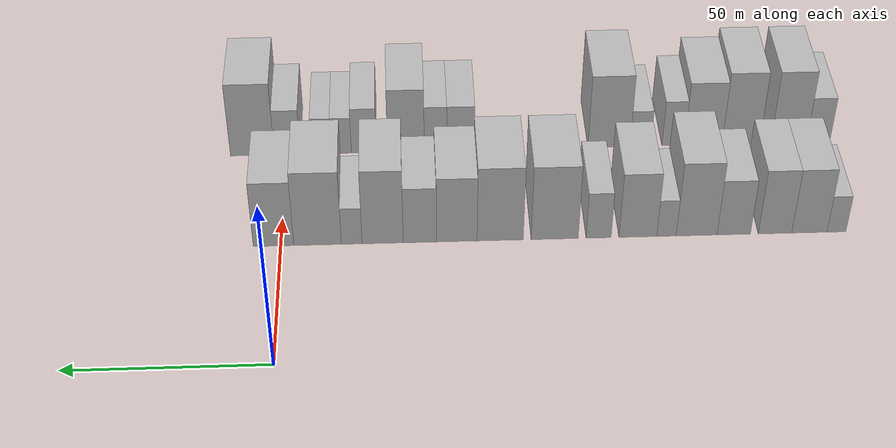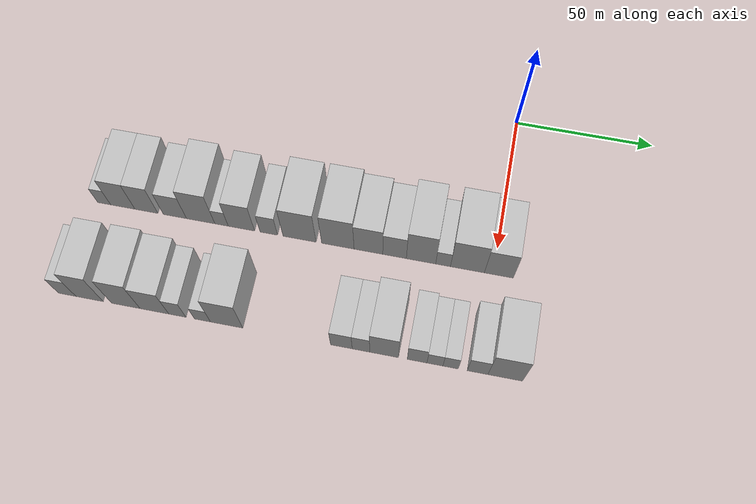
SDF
<sdf version="1.6">
 <world name="default">
  <model name="building_17">
   <static>1</static>
   <pose>50.0000 -140.2602 0 0.000000 0.000000 0.000000</pose>
   <link name="link">
    <pose>0 0 6.00 0 0 0</pose>
    <collision name="collision"><geometry><box><size>20.0000 4.8370 12.0000</size></box></geometry></collision>
    <visual name="visual">
     <cast_shadows>0</cast_shadows>
     <geometry><box><size>20.0000 4.8370 12.0000</size></box></geometry>
     <material>
      <script>
       <uri>model://HANNAS_wall/materials/scripts</uri>
       <uri>model://HANNAS_wall/materials/textures</uri>
       <name>vrc/HANNAS_wall</name>
      </script>
     </material>
    </visual>
   </link>
  </model>
  <model name="building_18">
   <static>1</static>
   <pose>50.0000 -133.3484 0 0.000000 0.000000 0.000000</pose>
   <link name="link">
    <pose>0 0 10.50 0 0 0</pose>
    <collision name="collision"><geometry><box><size>20.0000 8.9866 21.0000</size></box></geometry></collision>
    <visual name="visual">
     <cast_shadows>0</cast_shadows>
     <geometry><box><size>20.0000 8.9866 21.0000</size></box></geometry>
     <material>
      <script>
       <uri>model://HANNAS_wall/materials/scripts</uri>
       <uri>model://HANNAS_wall/materials/textures</uri>
       <name>vrc/HANNAS_wall</name>
      </script>
     </material>
    </visual>
   </link>
  </model>
  <model name="building_19">
   <static>1</static>
   <pose>50.0000 -124.6117 0 0.000000 0.000000 0.000000</pose>
   <link name="link">
    <pose>0 0 10.50 0 0 0</pose>
    <collision name="collision"><geometry><box><size>20.0000 8.4868 21.0000</size></box></geometry></collision>
    <visual name="visual">
     <cast_shadows>0</cast_shadows>
     <geometry><box><size>20.0000 8.4868 21.0000</size></box></geometry>
     <material>
      <script>
       <uri>model://HANNAS_wall/materials/scripts</uri>
       <uri>model://HANNAS_wall/materials/textures</uri>
       <name>vrc/HANNAS_wall</name>
      </script>
     </material>
    </visual>
   </link>
  </model>
  <model name="building_20">
   <static>1</static>
   <pose>50.0000 -114.1326 0 0.000000 0.000000 0.000000</pose>
   <link name="link">
    <pose>0 0 9.00 0 0 0</pose>
    <collision name="collision"><geometry><box><size>20.0000 8.4714 18.0000</size></box></geometry></collision>
    <visual name="visual">
     <cast_shadows>0</cast_shadows>
     <geometry><box><size>20.0000 8.4714 18.0000</size></box></geometry>
     <material>
      <script>
       <uri>model://HANNAS_wall/materials/scripts</uri>
       <uri>model://HANNAS_wall/materials/textures</uri>
       <name>vrc/HANNAS_wall</name>
      </script>
     </material>
    </visual>
   </link>
  </model>
  <model name="building_21">
   <static>1</static>
   <pose>50.0000 -104.7004 0 0.000000 0.000000 0.000000</pose>
   <link name="link">
    <pose>0 0 12.00 0 0 0</pose>
    <collision name="collision"><geometry><box><size>20.0000 10.3930 24.0000</size></box></geometry></collision>
    <visual name="visual">
     <cast_shadows>0</cast_shadows>
     <geometry><box><size>20.0000 10.3930 24.0000</size></box></geometry>
     <material>
      <script>
       <uri>model://HANNAS_wall/materials/scripts</uri>
       <uri>model://HANNAS_wall/materials/textures</uri>
       <name>vrc/HANNAS_wall</name>
      </script>
     </material>
    </visual>
   </link>
  </model>
  <model name="building_22">
   <static>1</static>
   <pose>50.0000 -97.0555 0 0.000000 0.000000 0.000000</pose>
   <link name="link">
    <pose>0 0 6.00 0 0 0</pose>
    <collision name="collision"><geometry><box><size>20.0000 4.8968 12.0000</size></box></geometry></collision>
    <visual name="visual">
     <cast_shadows>0</cast_shadows>
     <geometry><box><size>20.0000 4.8968 12.0000</size></box></geometry>
     <material>
      <script>
       <uri>model://HANNAS_wall/materials/scripts</uri>
       <uri>model://HANNAS_wall/materials/textures</uri>
       <name>vrc/HANNAS_wall</name>
      </script>
     </material>
    </visual>
   </link>
  </model>
  <model name="building_23">
   <static>1</static>
   <pose>50.0000 -89.8188 0 0.000000 0.000000 0.000000</pose>
   <link name="link">
    <pose>0 0 10.50 0 0 0</pose>
    <collision name="collision"><geometry><box><size>20.0000 9.5765 21.0000</size></box></geometry></collision>
    <visual name="visual">
     <cast_shadows>0</cast_shadows>
     <geometry><box><size>20.0000 9.5765 21.0000</size></box></geometry>
     <material>
      <script>
       <uri>model://HANNAS_wall/materials/scripts</uri>
       <uri>model://HANNAS_wall/materials/textures</uri>
       <name>vrc/HANNAS_wall</name>
      </script>
     </material>
    </visual>
   </link>
  </model>
  <model name="building_24">
   <static>1</static>
   <pose>50.0000 -79.8754 0 0.000000 0.000000 0.000000</pose>
   <link name="link">
    <pose>0 0 7.50 0 0 0</pose>
    <collision name="collision"><geometry><box><size>20.0000 6.3102 15.0000</size></box></geometry></collision>
    <visual name="visual">
     <cast_shadows>0</cast_shadows>
     <geometry><box><size>20.0000 6.3102 15.0000</size></box></geometry>
     <material>
      <script>
       <uri>model://HANNAS_wall/materials/scripts</uri>
       <uri>model://HANNAS_wall/materials/textures</uri>
       <name>vrc/HANNAS_wall</name>
      </script>
     </material>
    </visual>
   </link>
  </model>
  <model name="building_25">
   <static>1</static>
   <pose>50.0000 -68.7800 0 0.000000 0.000000 0.000000</pose>
   <link name="link">
    <pose>0 0 12.00 0 0 0</pose>
    <collision name="collision"><geometry><box><size>20.0000 11.8807 24.0000</size></box></geometry></collision>
    <visual name="visual">
     <cast_shadows>0</cast_shadows>
     <geometry><box><size>20.0000 11.8807 24.0000</size></box></geometry>
     <material>
      <script>
       <uri>model://HANNAS_wall/materials/scripts</uri>
       <uri>model://HANNAS_wall/materials/textures</uri>
       <name>vrc/HANNAS_wall</name>
      </script>
     </material>
    </visual>
   </link>
  </model>
  <model name="building_26">
   <static>1</static>
   <pose>50.0000 -55.0351 0 0.000000 0.000000 0.000000</pose>
   <link name="link">
    <pose>0 0 12.00 0 0 0</pose>
    <collision name="collision"><geometry><box><size>20.0000 11.6092 24.0000</size></box></geometry></collision>
    <visual name="visual">
     <cast_shadows>0</cast_shadows>
     <geometry><box><size>20.0000 11.6092 24.0000</size></box></geometry>
     <material>
      <script>
       <uri>model://HANNAS_wall/materials/scripts</uri>
       <uri>model://HANNAS_wall/materials/textures</uri>
       <name>vrc/HANNAS_wall</name>
      </script>
     </material>
    </visual>
   </link>
  </model>
  <model name="building_27">
   <static>1</static>
   <pose>50.0000 -44.1194 0 0.000000 0.000000 0.000000</pose>
   <link name="link">
    <pose>0 0 10.50 0 0 0</pose>
    <collision name="collision"><geometry><box><size>20.0000 10.2222 21.0000</size></box></geometry></collision>
    <visual name="visual">
     <cast_shadows>0</cast_shadows>
     <geometry><box><size>20.0000 10.2222 21.0000</size></box></geometry>
     <material>
      <script>
       <uri>model://HANNAS_wall/materials/scripts</uri>
       <uri>model://HANNAS_wall/materials/textures</uri>
       <name>vrc/HANNAS_wall</name>
      </script>
     </material>
    </visual>
   </link>
  </model>
  <model name="building_28">
   <static>1</static>
   <pose>50.0000 -34.8238 0 0.000000 0.000000 0.000000</pose>
   <link name="link">
    <pose>0 0 9.00 0 0 0</pose>
    <collision name="collision"><geometry><box><size>20.0000 8.3691 18.0000</size></box></geometry></collision>
    <visual name="visual">
     <cast_shadows>0</cast_shadows>
     <geometry><box><size>20.0000 8.3691 18.0000</size></box></geometry>
     <material>
      <script>
       <uri>model://HANNAS_wall/materials/scripts</uri>
       <uri>model://HANNAS_wall/materials/textures</uri>
       <name>vrc/HANNAS_wall</name>
      </script>
     </material>
    </visual>
   </link>
  </model>
  <model name="building_29">
   <static>1</static>
   <pose>50.0000 -25.4632 0 0.000000 0.000000 0.000000</pose>
   <link name="link">
    <pose>0 0 12.00 0 0 0</pose>
    <collision name="collision"><geometry><box><size>20.0000 10.3520 24.0000</size></box></geometry></collision>
    <visual name="visual">
     <cast_shadows>0</cast_shadows>
     <geometry><box><size>20.0000 10.3520 24.0000</size></box></geometry>
     <material>
      <script>
       <uri>model://HANNAS_wall/materials/scripts</uri>
       <uri>model://HANNAS_wall/materials/textures</uri>
       <name>vrc/HANNAS_wall</name>
      </script>
     </material>
    </visual>
   </link>
  </model>
  <model name="building_30">
   <static>1</static>
   <pose>50.0000 -17.6929 0 0.000000 0.000000 0.000000</pose>
   <link name="link">
    <pose>0 0 6.00 0 0 0</pose>
    <collision name="collision"><geometry><box><size>20.0000 5.1887 12.0000</size></box></geometry></collision>
    <visual name="visual">
     <cast_shadows>0</cast_shadows>
     <geometry><box><size>20.0000 5.1887 12.0000</size></box></geometry>
     <material>
      <script>
       <uri>model://HANNAS_wall/materials/scripts</uri>
       <uri>model://HANNAS_wall/materials/textures</uri>
       <name>vrc/HANNAS_wall</name>
      </script>
     </material>
    </visual>
   </link>
  </model>
  <model name="building_31">
   <static>1</static>
   <pose>50.0000 -9.1304 0 0.000000 0.000000 0.000000</pose>
   <link name="link">
    <pose>0 0 12.00 0 0 0</pose>
    <collision name="collision"><geometry><box><size>20.0000 11.9362 24.0000</size></box></geometry></collision>
    <visual name="visual">
     <cast_shadows>0</cast_shadows>
     <geometry><box><size>20.0000 11.9362 24.0000</size></box></geometry>
     <material>
      <script>
       <uri>model://HANNAS_wall/materials/scripts</uri>
       <uri>model://HANNAS_wall/materials/textures</uri>
       <name>vrc/HANNAS_wall</name>
      </script>
     </material>
    </visual>
   </link>
  </model>
  <model name="building_32">
   <static>1</static>
   <pose>50.0000 1.9001 0 0.000000 0.000000 0.000000</pose>
   <link name="link">
    <pose>0 0 10.50 0 0 0</pose>
    <collision name="collision"><geometry><box><size>20.0000 10.1247 21.0000</size></box></geometry></collision>
    <visual name="visual">
     <cast_shadows>0</cast_shadows>
     <geometry><box><size>20.0000 10.1247 21.0000</size></box></geometry>
     <material>
      <script>
       <uri>model://HANNAS_wall/materials/scripts</uri>
       <uri>model://HANNAS_wall/materials/textures</uri>
       <name>vrc/HANNAS_wall</name>
      </script>
     </material>
    </visual>
   </link>
  </model>
  <model name="building_81">
   <static>1</static>
   <pose>85.0000 -142.6343 0 0.000000 0.000000 0.000000</pose>
   <link name="link">
    <pose>0 0 7.50 0 0 0</pose>
    <collision name="collision"><geometry><box><size>20.0000 6.2866 15.0000</size></box></geometry></collision>
    <visual name="visual">
     <cast_shadows>0</cast_shadows>
     <geometry><box><size>20.0000 6.2866 15.0000</size></box></geometry>
     <material>
      <script>
       <uri>model://HANNAS_wall/materials/scripts</uri>
       <uri>model://HANNAS_wall/materials/textures</uri>
       <name>vrc/HANNAS_wall</name>
      </script>
     </material>
    </visual>
   </link>
  </model>
  <model name="building_82">
   <static>1</static>
   <pose>85.0000 -134.6374 0 0.000000 0.000000 0.000000</pose>
   <link name="link">
    <pose>0 0 12.00 0 0 0</pose>
    <collision name="collision"><geometry><box><size>20.0000 9.7072 24.0000</size></box></geometry></collision>
    <visual name="visual">
     <cast_shadows>0</cast_shadows>
     <geometry><box><size>20.0000 9.7072 24.0000</size></box></geometry>
     <material>
      <script>
       <uri>model://HANNAS_wall/materials/scripts</uri>
       <uri>model://HANNAS_wall/materials/textures</uri>
       <name>vrc/HANNAS_wall</name>
      </script>
     </material>
    </visual>
   </link>
  </model>
  <model name="building_83">
   <static>1</static>
   <pose>85.0000 -121.7059 0 0.000000 0.000000 0.000000</pose>
   <link name="link">
    <pose>0 0 12.00 0 0 0</pose>
    <collision name="collision"><geometry><box><size>20.0000 10.1557 24.0000</size></box></geometry></collision>
    <visual name="visual">
     <cast_shadows>0</cast_shadows>
     <geometry><box><size>20.0000 10.1557 24.0000</size></box></geometry>
     <material>
      <script>
       <uri>model://HANNAS_wall/materials/scripts</uri>
       <uri>model://HANNAS_wall/materials/textures</uri>
       <name>vrc/HANNAS_wall</name>
      </script>
     </material>
    </visual>
   </link>
  </model>
  <model name="building_84">
   <static>1</static>
   <pose>85.0000 -111.5536 0 0.000000 0.000000 0.000000</pose>
   <link name="link">
    <pose>0 0 10.50 0 0 0</pose>
    <collision name="collision"><geometry><box><size>20.0000 10.1488 21.0000</size></box></geometry></collision>
    <visual name="visual">
     <cast_shadows>0</cast_shadows>
     <geometry><box><size>20.0000 10.1488 21.0000</size></box></geometry>
     <material>
      <script>
       <uri>model://HANNAS_wall/materials/scripts</uri>
       <uri>model://HANNAS_wall/materials/textures</uri>
       <name>vrc/HANNAS_wall</name>
      </script>
     </material>
    </visual>
   </link>
  </model>
  <model name="building_85">
   <static>1</static>
   <pose>85.0000 -103.4666 0 0.000000 0.000000 0.000000</pose>
   <link name="link">
    <pose>0 0 7.50 0 0 0</pose>
    <collision name="collision"><geometry><box><size>20.0000 6.0253 15.0000</size></box></geometry></collision>
    <visual name="visual">
     <cast_shadows>0</cast_shadows>
     <geometry><box><size>20.0000 6.0253 15.0000</size></box></geometry>
     <material>
      <script>
       <uri>model://HANNAS_wall/materials/scripts</uri>
       <uri>model://HANNAS_wall/materials/textures</uri>
       <name>vrc/HANNAS_wall</name>
      </script>
     </material>
    </visual>
   </link>
  </model>
  <model name="building_86">
   <static>1</static>
   <pose>85.0000 -94.6556 0 0.000000 0.000000 0.000000</pose>
   <link name="link">
    <pose>0 0 6.00 0 0 0</pose>
    <collision name="collision"><geometry><box><size>20.0000 5.5968 12.0000</size></box></geometry></collision>
    <visual name="visual">
     <cast_shadows>0</cast_shadows>
     <geometry><box><size>20.0000 5.5968 12.0000</size></box></geometry>
     <material>
      <script>
       <uri>model://HANNAS_wall/materials/scripts</uri>
       <uri>model://HANNAS_wall/materials/textures</uri>
       <name>vrc/HANNAS_wall</name>
      </script>
     </material>
    </visual>
   </link>
  </model>
  <model name="building_87">
   <static>1</static>
   <pose>85.0000 -86.2173 0 0.000000 0.000000 0.000000</pose>
   <link name="link">
    <pose>0 0 12.00 0 0 0</pose>
    <collision name="collision"><geometry><box><size>20.0000 11.2799 24.0000</size></box></geometry></collision>
    <visual name="visual">
     <cast_shadows>0</cast_shadows>
     <geometry><box><size>20.0000 11.2799 24.0000</size></box></geometry>
     <material>
      <script>
       <uri>model://HANNAS_wall/materials/scripts</uri>
       <uri>model://HANNAS_wall/materials/textures</uri>
       <name>vrc/HANNAS_wall</name>
      </script>
     </material>
    </visual>
   </link>
  </model>
  <model name="building_88">
   <static>1</static>
   <pose>85.0000 -46.4726 0 0.000000 0.000000 0.000000</pose>
   <link name="link">
    <pose>0 0 7.50 0 0 0</pose>
    <collision name="collision"><geometry><box><size>20.0000 7.4031 15.0000</size></box></geometry></collision>
    <visual name="visual">
     <cast_shadows>0</cast_shadows>
     <geometry><box><size>20.0000 7.4031 15.0000</size></box></geometry>
     <material>
      <script>
       <uri>model://HANNAS_wall/materials/scripts</uri>
       <uri>model://HANNAS_wall/materials/textures</uri>
       <name>vrc/HANNAS_wall</name>
      </script>
     </material>
    </visual>
   </link>
  </model>
  <model name="building_89">
   <static>1</static>
   <pose>85.0000 -39.7674 0 0.000000 0.000000 0.000000</pose>
   <link name="link">
    <pose>0 0 7.50 0 0 0</pose>
    <collision name="collision"><geometry><box><size>20.0000 6.0074 15.0000</size></box></geometry></collision>
    <visual name="visual">
     <cast_shadows>0</cast_shadows>
     <geometry><box><size>20.0000 6.0074 15.0000</size></box></geometry>
     <material>
      <script>
       <uri>model://HANNAS_wall/materials/scripts</uri>
       <uri>model://HANNAS_wall/materials/textures</uri>
       <name>vrc/HANNAS_wall</name>
      </script>
     </material>
    </visual>
   </link>
  </model>
  <model name="building_90">
   <static>1</static>
   <pose>85.0000 -31.8712 0 0.000000 0.000000 0.000000</pose>
   <link name="link">
    <pose>0 0 10.50 0 0 0</pose>
    <collision name="collision"><geometry><box><size>20.0000 9.7850 21.0000</size></box></geometry></collision>
    <visual name="visual">
     <cast_shadows>0</cast_shadows>
     <geometry><box><size>20.0000 9.7850 21.0000</size></box></geometry>
     <material>
      <script>
       <uri>model://HANNAS_wall/materials/scripts</uri>
       <uri>model://HANNAS_wall/materials/textures</uri>
       <name>vrc/HANNAS_wall</name>
      </script>
     </material>
    </visual>
   </link>
  </model>
  <model name="building_91">
   <static>1</static>
   <pose>85.0000 -20.6414 0 0.000000 0.000000 0.000000</pose>
   <link name="link">
    <pose>0 0 7.50 0 0 0</pose>
    <collision name="collision"><geometry><box><size>20.0000 6.6747 15.0000</size></box></geometry></collision>
    <visual name="visual">
     <cast_shadows>0</cast_shadows>
     <geometry><box><size>20.0000 6.6747 15.0000</size></box></geometry>
     <material>
      <script>
       <uri>model://HANNAS_wall/materials/scripts</uri>
       <uri>model://HANNAS_wall/materials/textures</uri>
       <name>vrc/HANNAS_wall</name>
      </script>
     </material>
    </visual>
   </link>
  </model>
  <model name="building_92">
   <static>1</static>
   <pose>85.0000 -14.6078 0 0.000000 0.000000 0.000000</pose>
   <link name="link">
    <pose>0 0 6.00 0 0 0</pose>
    <collision name="collision"><geometry><box><size>20.0000 5.3924 12.0000</size></box></geometry></collision>
    <visual name="visual">
     <cast_shadows>0</cast_shadows>
     <geometry><box><size>20.0000 5.3924 12.0000</size></box></geometry>
     <material>
      <script>
       <uri>model://HANNAS_wall/materials/scripts</uri>
       <uri>model://HANNAS_wall/materials/textures</uri>
       <name>vrc/HANNAS_wall</name>
      </script>
     </material>
    </visual>
   </link>
  </model>
  <model name="building_93">
   <static>1</static>
   <pose>85.0000 -9.3055 0 0.000000 0.000000 0.000000</pose>
   <link name="link">
    <pose>0 0 6.00 0 0 0</pose>
    <collision name="collision"><geometry><box><size>20.0000 5.2124 12.0000</size></box></geometry></collision>
    <visual name="visual">
     <cast_shadows>0</cast_shadows>
     <geometry><box><size>20.0000 5.2124 12.0000</size></box></geometry>
     <material>
      <script>
       <uri>model://HANNAS_wall/materials/scripts</uri>
       <uri>model://HANNAS_wall/materials/textures</uri>
       <name>vrc/HANNAS_wall</name>
      </script>
     </material>
    </visual>
   </link>
  </model>
  <model name="building_94">
   <static>1</static>
   <pose>85.0000 -0.2427 0 0.000000 0.000000 0.000000</pose>
   <link name="link">
    <pose>0 0 7.50 0 0 0</pose>
    <collision name="collision"><geometry><box><size>20.0000 6.9132 15.0000</size></box></geometry></collision>
    <visual name="visual">
     <cast_shadows>0</cast_shadows>
     <geometry><box><size>20.0000 6.9132 15.0000</size></box></geometry>
     <material>
      <script>
       <uri>model://HANNAS_wall/materials/scripts</uri>
       <uri>model://HANNAS_wall/materials/textures</uri>
       <name>vrc/HANNAS_wall</name>
      </script>
     </material>
    </visual>
   </link>
  </model>
  <model name="building_95">
   <static>1</static>
   <pose>85.0000 9.0322 0 0.000000 0.000000 0.000000</pose>
   <link name="link">
    <pose>0 0 12.00 0 0 0</pose>
    <collision name="collision"><geometry><box><size>20.0000 11.6365 24.0000</size></box></geometry></collision>
    <visual name="visual">
     <cast_shadows>0</cast_shadows>
     <geometry><box><size>20.0000 11.6365 24.0000</size></box></geometry>
     <material>
      <script>
       <uri>model://HANNAS_wall/materials/scripts</uri>
       <uri>model://HANNAS_wall/materials/textures</uri>
       <name>vrc/HANNAS_wall</name>
      </script>
     </material>
    </visual>
   </link>
  </model>
 </world>
</sdf>
